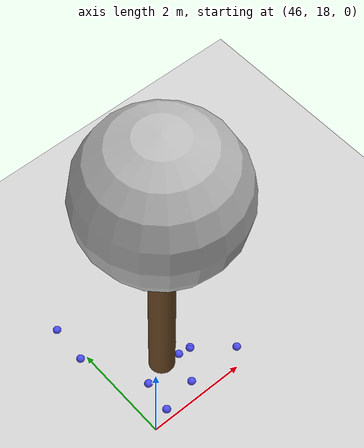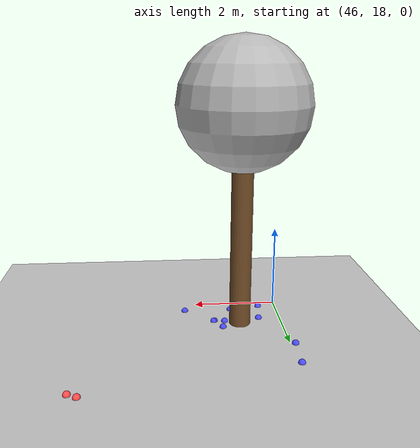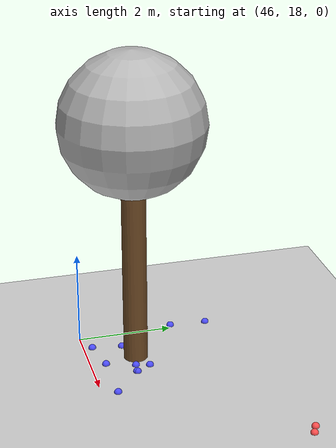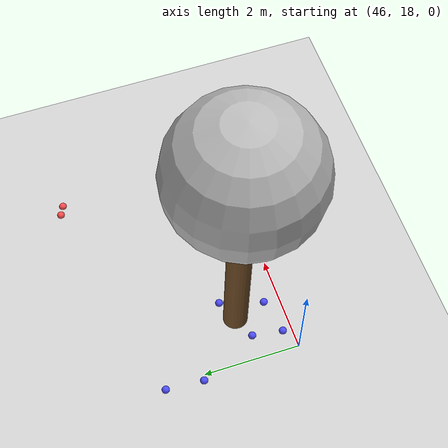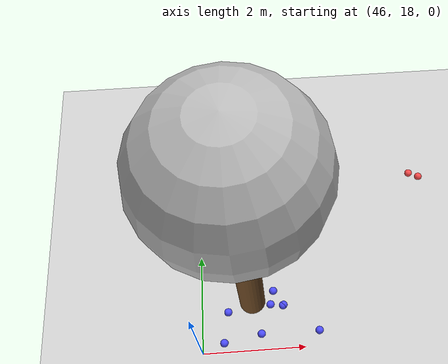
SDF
<sdf version="1.7">
 <world name="default">
  <model name="ground_plane">
   <static>1</static>
   <link name="link">
    <collision name="collision">
     <geometry><plane><normal>0 0 1</normal><size>100 100</size></plane></geometry>
     <surface>
      <contact><collide_bitmask>65535</collide_bitmask></contact>
      <friction><ode><mu>100</mu><mu2>50</mu2></ode></friction>
     </surface>
    </collision>
    <visual name="visual">
     <cast_shadows>0</cast_shadows>
     <geometry><plane><normal>0 0 1</normal><size>100 100</size></plane></geometry>
     <material>
      <script><uri>file://media/materials/scripts/gazebo.material</uri><name>Gazebo/Grey</name></script>
     </material>
    </visual>
   </link>
  </model>
  <model name="tree_simple_54">
   <static>1</static>
   <link name="link">
    <pose>0 0 0.1 0 -0 0</pose>
    <inertial>
     <mass>666</mass>
     <inertia>
      <ixx>0.0861167</ixx>
      <ixy>0</ixy>
      <ixz>0</ixz>
      <iyy>0.0861167</iyy>
      <iyz>0</iyz>
      <izz>0.0861167</izz>
     </inertia>
    </inertial>
    <collision name="collision_trunk">
     <pose>0 0 2 0 -0 0</pose>
     <geometry><cylinder><radius>0.25</radius><length>4</length></cylinder></geometry>
     <surface>
      <contact>
       <poissons_ratio>0.347</poissons_ratio>
       <elastic_modulus>8.8e+09</elastic_modulus>
       <ode><kp>100000</kp><kd>100</kd><max_vel>100</max_vel><min_depth>0.001</min_depth></ode>
      </contact>
      <friction>
       <torsional>
        <coefficient>1</coefficient>
        <use_patch_radius>0</use_patch_radius>
        <surface_radius>0.01</surface_radius>
       </torsional>
      </friction>
     </surface>
    </collision>
    <collision name="collision_treetop">
     <pose>0 0 5.2 0 -0 0</pose>
     <geometry><sphere><radius>1.5</radius></sphere></geometry>
     <surface>
      <contact>
       <poissons_ratio>0.347</poissons_ratio>
       <elastic_modulus>8.8e+09</elastic_modulus>
       <ode><kp>100000</kp><kd>100</kd><max_vel>100</max_vel><min_depth>0.001</min_depth></ode>
      </contact>
      <friction>
       <torsional>
        <coefficient>1</coefficient>
        <use_patch_radius>0</use_patch_radius>
        <surface_radius>0.01</surface_radius>
       </torsional>
      </friction>
     </surface>
    </collision>
    <visual name="trunk">
     <pose>0 0 2 0 -0 0</pose>
     <geometry><cylinder><radius>0.25</radius><length>4</length></cylinder></geometry>
     <material>
      <script>
       <uri>model://tree_simple/scripts</uri>
       <uri>model://tree_simple/materials/textures</uri>
       <name>TreeSimple/Trunk</name>
      </script>
     </material>
    </visual>
    <visual name="treetop">
     <pose>0 0 5.2 0 -0 0</pose>
     <geometry><sphere><radius>1.5</radius></sphere></geometry>
     <material>
      <script>
       <uri>model://tree_simple/scripts</uri>
       <uri>model://tree_simple/materials/textures</uri>
       <name>TreeSimple/Treetop</name>
      </script>
     </material>
    </visual>
   </link>
   <pose>47 19 -0.1 0 -0 0</pose>
  </model>
  <model name="seed_red_211">
   <link name="link">
    <inertial>
     <mass>1</mass>
     <inertia><ixx>0.1</ixx><ixy>0</ixy><ixz>0</ixz><iyy>0.1</iyy><iyz>0</iyz><izz>0.1</izz></inertia>
    </inertial>
    <visual name="visual">
     <geometry><sphere><radius>0.08</radius></sphere></geometry>
     <material>
      <script><name>Gazebo/Grey</name><uri>file://media/materials/scripts/gazebo.material</uri></script>
      <shader type="pixel"><normal_map>__default__</normal_map></shader>
      <ambient>1 0.3 0.3 1</ambient>
      <diffuse>0.7 0.7 0.7 1</diffuse>
      <specular>0.01 0.01 0.01 1</specular>
      <emissive>0 0 0 1</emissive>
     </material>
    </visual>
    <collision name="collision">
     <geometry><sphere><radius>0.0005</radius></sphere></geometry>
     <surface>
      <friction>
       <ode><mu>1</mu><mu2>1</mu2><fdir1>0 0 0</fdir1><slip1>0</slip1><slip2>0</slip2></ode>
       <torsional>
        <coefficient>1</coefficient>
        <patch_radius>0</patch_radius>
        <surface_radius>0</surface_radius>
        <use_patch_radius>1</use_patch_radius>
        <ode><slip>0</slip></ode>
       </torsional>
      </friction>
      <bounce><restitution_coefficient>0</restitution_coefficient><threshold>1e+06</threshold></bounce>
      <contact>
       <collide_without_contact>0</collide_without_contact>
       <collide_without_contact_bitmask>1</collide_without_contact_bitmask>
       <collide_bitmask>1</collide_bitmask>
       <ode>
        <soft_cfm>0</soft_cfm>
        <soft_erp>0.2</soft_erp>
        <kp>1e+13</kp>
        <kd>1</kd>
        <max_vel>0.01</max_vel>
        <min_depth>0</min_depth>
       </ode>
       <bullet>
        <split_impulse>1</split_impulse>
        <split_impulse_penetration_threshold>-0.01</split_impulse_penetration_threshold>
        <soft_cfm>0</soft_cfm>
        <soft_erp>0.2</soft_erp>
        <kp>1e+13</kp>
        <kd>1</kd>
       </bullet>
      </contact>
     </surface>
    </collision>
   </link>
   <static>0</static>
   <pose>50.6956 21.6057 0.0005 0 -0 0</pose>
  </model>
  <model name="seed_red_216">
   <link name="link">
    <inertial>
     <mass>1</mass>
     <inertia><ixx>0.1</ixx><ixy>0</ixy><ixz>0</ixz><iyy>0.1</iyy><iyz>0</iyz><izz>0.1</izz></inertia>
    </inertial>
    <visual name="visual">
     <geometry><sphere><radius>0.08</radius></sphere></geometry>
     <material>
      <script><name>Gazebo/Grey</name><uri>file://media/materials/scripts/gazebo.material</uri></script>
      <shader type="pixel"><normal_map>__default__</normal_map></shader>
      <ambient>1 0.3 0.3 1</ambient>
      <diffuse>0.7 0.7 0.7 1</diffuse>
      <specular>0.01 0.01 0.01 1</specular>
      <emissive>0 0 0 1</emissive>
     </material>
    </visual>
    <collision name="collision">
     <geometry><sphere><radius>0.0005</radius></sphere></geometry>
     <surface>
      <friction>
       <ode><mu>1</mu><mu2>1</mu2><fdir1>0 0 0</fdir1><slip1>0</slip1><slip2>0</slip2></ode>
       <torsional>
        <coefficient>1</coefficient>
        <patch_radius>0</patch_radius>
        <surface_radius>0</surface_radius>
        <use_patch_radius>1</use_patch_radius>
        <ode><slip>0</slip></ode>
       </torsional>
      </friction>
      <bounce><restitution_coefficient>0</restitution_coefficient><threshold>1e+06</threshold></bounce>
      <contact>
       <collide_without_contact>0</collide_without_contact>
       <collide_without_contact_bitmask>1</collide_without_contact_bitmask>
       <collide_bitmask>1</collide_bitmask>
       <ode>
        <soft_cfm>0</soft_cfm>
        <soft_erp>0.2</soft_erp>
        <kp>1e+13</kp>
        <kd>1</kd>
        <max_vel>0.01</max_vel>
        <min_depth>0</min_depth>
       </ode>
       <bullet>
        <split_impulse>1</split_impulse>
        <split_impulse_penetration_threshold>-0.01</split_impulse_penetration_threshold>
        <soft_cfm>0</soft_cfm>
        <soft_erp>0.2</soft_erp>
        <kp>1e+13</kp>
        <kd>1</kd>
       </bullet>
      </contact>
     </surface>
    </collision>
   </link>
   <static>0</static>
   <pose>50.4954 21.7033 0.0005 0 -0 0</pose>
  </model>
  <model name="seed_blue_89">
   <link name="link">
    <inertial>
     <mass>1</mass>
     <inertia><ixx>0.1</ixx><ixy>0</ixy><ixz>0</ixz><iyy>0.1</iyy><iyz>0</iyz><izz>0.1</izz></inertia>
    </inertial>
    <visual name="visual">
     <geometry><sphere><radius>0.08</radius></sphere></geometry>
     <material>
      <script><name>Gazebo/Grey</name><uri>file://media/materials/scripts/gazebo.material</uri></script>
      <shader type="pixel"><normal_map>__default__</normal_map></shader>
      <ambient>0.3 0.3 1 1</ambient>
      <diffuse>0.7 0.7 0.7 1</diffuse>
      <specular>0.01 0.01 0.01 1</specular>
      <emissive>0 0 0 1</emissive>
     </material>
    </visual>
    <collision name="collision">
     <geometry><sphere><radius>0.0005</radius></sphere></geometry>
     <surface>
      <friction>
       <ode><mu>1</mu><mu2>1</mu2><fdir1>0 0 0</fdir1><slip1>0</slip1><slip2>0</slip2></ode>
       <torsional>
        <coefficient>1</coefficient>
        <patch_radius>0</patch_radius>
        <surface_radius>0</surface_radius>
        <use_patch_radius>1</use_patch_radius>
        <ode><slip>0</slip></ode>
       </torsional>
      </friction>
      <bounce><restitution_coefficient>0</restitution_coefficient><threshold>1e+06</threshold></bounce>
      <contact>
       <collide_without_contact>0</collide_without_contact>
       <collide_without_contact_bitmask>1</collide_without_contact_bitmask>
       <collide_bitmask>1</collide_bitmask>
       <ode>
        <soft_cfm>0</soft_cfm>
        <soft_erp>0.2</soft_erp>
        <kp>1e+13</kp>
        <kd>1</kd>
        <max_vel>0.01</max_vel>
        <min_depth>0</min_depth>
       </ode>
       <bullet>
        <split_impulse>1</split_impulse>
        <split_impulse_penetration_threshold>-0.01</split_impulse_penetration_threshold>
        <soft_cfm>0</soft_cfm>
        <soft_erp>0.2</soft_erp>
        <kp>1e+13</kp>
        <kd>1</kd>
       </bullet>
      </contact>
     </surface>
    </collision>
   </link>
   <static>0</static>
   <pose>45.8852 20.0489 0.0005 0 -0 0</pose>
  </model>
  <model name="seed_blue_96">
   <link name="link">
    <inertial>
     <mass>1</mass>
     <inertia><ixx>0.1</ixx><ixy>0</ixy><ixz>0</ixz><iyy>0.1</iyy><iyz>0</iyz><izz>0.1</izz></inertia>
    </inertial>
    <visual name="visual">
     <geometry><sphere><radius>0.08</radius></sphere></geometry>
     <material>
      <script><name>Gazebo/Grey</name><uri>file://media/materials/scripts/gazebo.material</uri></script>
      <shader type="pixel"><normal_map>__default__</normal_map></shader>
      <ambient>0.3 0.3 1 1</ambient>
      <diffuse>0.7 0.7 0.7 1</diffuse>
      <specular>0.01 0.01 0.01 1</specular>
      <emissive>0 0 0 1</emissive>
     </material>
    </visual>
    <collision name="collision">
     <geometry><sphere><radius>0.0005</radius></sphere></geometry>
     <surface>
      <friction>
       <ode><mu>1</mu><mu2>1</mu2><fdir1>0 0 0</fdir1><slip1>0</slip1><slip2>0</slip2></ode>
       <torsional>
        <coefficient>1</coefficient>
        <patch_radius>0</patch_radius>
        <surface_radius>0</surface_radius>
        <use_patch_radius>1</use_patch_radius>
        <ode><slip>0</slip></ode>
       </torsional>
      </friction>
      <bounce><restitution_coefficient>0</restitution_coefficient><threshold>1e+06</threshold></bounce>
      <contact>
       <collide_without_contact>0</collide_without_contact>
       <collide_without_contact_bitmask>1</collide_without_contact_bitmask>
       <collide_bitmask>1</collide_bitmask>
       <ode>
        <soft_cfm>0</soft_cfm>
        <soft_erp>0.2</soft_erp>
        <kp>1e+13</kp>
        <kd>1</kd>
        <max_vel>0.01</max_vel>
        <min_depth>0</min_depth>
       </ode>
       <bullet>
        <split_impulse>1</split_impulse>
        <split_impulse_penetration_threshold>-0.01</split_impulse_penetration_threshold>
        <soft_cfm>0</soft_cfm>
        <soft_erp>0.2</soft_erp>
        <kp>1e+13</kp>
        <kd>1</kd>
       </bullet>
      </contact>
     </surface>
    </collision>
   </link>
   <static>0</static>
   <pose>45.9382 20.83 0.0005 0 -0 0</pose>
  </model>
  <model name="seed_blue_117">
   <link name="link">
    <inertial>
     <mass>1</mass>
     <inertia><ixx>0.1</ixx><ixy>0</ixy><ixz>0</ixz><iyy>0.1</iyy><iyz>0</iyz><izz>0.1</izz></inertia>
    </inertial>
    <visual name="visual">
     <geometry><sphere><radius>0.08</radius></sphere></geometry>
     <material>
      <script><name>Gazebo/Grey</name><uri>file://media/materials/scripts/gazebo.material</uri></script>
      <shader type="pixel"><normal_map>__default__</normal_map></shader>
      <ambient>0.3 0.3 1 1</ambient>
      <diffuse>0.7 0.7 0.7 1</diffuse>
      <specular>0.01 0.01 0.01 1</specular>
      <emissive>0 0 0 1</emissive>
     </material>
    </visual>
    <collision name="collision">
     <geometry><sphere><radius>0.0005</radius></sphere></geometry>
     <surface>
      <friction>
       <ode><mu>1</mu><mu2>1</mu2><fdir1>0 0 0</fdir1><slip1>0</slip1><slip2>0</slip2></ode>
       <torsional>
        <coefficient>1</coefficient>
        <patch_radius>0</patch_radius>
        <surface_radius>0</surface_radius>
        <use_patch_radius>1</use_patch_radius>
        <ode><slip>0</slip></ode>
       </torsional>
      </friction>
      <bounce><restitution_coefficient>0</restitution_coefficient><threshold>1e+06</threshold></bounce>
      <contact>
       <collide_without_contact>0</collide_without_contact>
       <collide_without_contact_bitmask>1</collide_without_contact_bitmask>
       <collide_bitmask>1</collide_bitmask>
       <ode>
        <soft_cfm>0</soft_cfm>
        <soft_erp>0.2</soft_erp>
        <kp>1e+13</kp>
        <kd>1</kd>
        <max_vel>0.01</max_vel>
        <min_depth>0</min_depth>
       </ode>
       <bullet>
        <split_impulse>1</split_impulse>
        <split_impulse_penetration_threshold>-0.01</split_impulse_penetration_threshold>
        <soft_cfm>0</soft_cfm>
        <soft_erp>0.2</soft_erp>
        <kp>1e+13</kp>
        <kd>1</kd>
       </bullet>
      </contact>
     </surface>
    </collision>
   </link>
   <static>0</static>
   <pose>47.1506 18.3251 0.0005 0 -0 0</pose>
  </model>
  <model name="seed_blue_118">
   <link name="link">
    <inertial>
     <mass>1</mass>
     <inertia><ixx>0.1</ixx><ixy>0</ixy><ixz>0</ixz><iyy>0.1</iyy><iyz>0</iyz><izz>0.1</izz></inertia>
    </inertial>
    <visual name="visual">
     <geometry><sphere><radius>0.08</radius></sphere></geometry>
     <material>
      <script><name>Gazebo/Grey</name><uri>file://media/materials/scripts/gazebo.material</uri></script>
      <shader type="pixel"><normal_map>__default__</normal_map></shader>
      <ambient>0.3 0.3 1 1</ambient>
      <diffuse>0.7 0.7 0.7 1</diffuse>
      <specular>0.01 0.01 0.01 1</specular>
      <emissive>0 0 0 1</emissive>
     </material>
    </visual>
    <collision name="collision">
     <geometry><sphere><radius>0.0005</radius></sphere></geometry>
     <surface>
      <friction>
       <ode><mu>1</mu><mu2>1</mu2><fdir1>0 0 0</fdir1><slip1>0</slip1><slip2>0</slip2></ode>
       <torsional>
        <coefficient>1</coefficient>
        <patch_radius>0</patch_radius>
        <surface_radius>0</surface_radius>
        <use_patch_radius>1</use_patch_radius>
        <ode><slip>0</slip></ode>
       </torsional>
      </friction>
      <bounce><restitution_coefficient>0</restitution_coefficient><threshold>1e+06</threshold></bounce>
      <contact>
       <collide_without_contact>0</collide_without_contact>
       <collide_without_contact_bitmask>1</collide_without_contact_bitmask>
       <collide_bitmask>1</collide_bitmask>
       <ode>
        <soft_cfm>0</soft_cfm>
        <soft_erp>0.2</soft_erp>
        <kp>1e+13</kp>
        <kd>1</kd>
        <max_vel>0.01</max_vel>
        <min_depth>0</min_depth>
       </ode>
       <bullet>
        <split_impulse>1</split_impulse>
        <split_impulse_penetration_threshold>-0.01</split_impulse_penetration_threshold>
        <soft_cfm>0</soft_cfm>
        <soft_erp>0.2</soft_erp>
        <kp>1e+13</kp>
        <kd>1</kd>
       </bullet>
      </contact>
     </surface>
    </collision>
   </link>
   <static>0</static>
   <pose>47.6007 18.8811 0.0005 0 -0 0</pose>
  </model>
  <model name="seed_blue_119">
   <link name="link">
    <inertial>
     <mass>1</mass>
     <inertia><ixx>0.1</ixx><ixy>0</ixy><ixz>0</ixz><iyy>0.1</iyy><iyz>0</iyz><izz>0.1</izz></inertia>
    </inertial>
    <visual name="visual">
     <geometry><sphere><radius>0.08</radius></sphere></geometry>
     <material>
      <script><name>Gazebo/Grey</name><uri>file://media/materials/scripts/gazebo.material</uri></script>
      <shader type="pixel"><normal_map>__default__</normal_map></shader>
      <ambient>0.3 0.3 1 1</ambient>
      <diffuse>0.7 0.7 0.7 1</diffuse>
      <specular>0.01 0.01 0.01 1</specular>
      <emissive>0 0 0 1</emissive>
     </material>
    </visual>
    <collision name="collision">
     <geometry><sphere><radius>0.0005</radius></sphere></geometry>
     <surface>
      <friction>
       <ode><mu>1</mu><mu2>1</mu2><fdir1>0 0 0</fdir1><slip1>0</slip1><slip2>0</slip2></ode>
       <torsional>
        <coefficient>1</coefficient>
        <patch_radius>0</patch_radius>
        <surface_radius>0</surface_radius>
        <use_patch_radius>1</use_patch_radius>
        <ode><slip>0</slip></ode>
       </torsional>
      </friction>
      <bounce><restitution_coefficient>0</restitution_coefficient><threshold>1e+06</threshold></bounce>
      <contact>
       <collide_without_contact>0</collide_without_contact>
       <collide_without_contact_bitmask>1</collide_without_contact_bitmask>
       <collide_bitmask>1</collide_bitmask>
       <ode>
        <soft_cfm>0</soft_cfm>
        <soft_erp>0.2</soft_erp>
        <kp>1e+13</kp>
        <kd>1</kd>
        <max_vel>0.01</max_vel>
        <min_depth>0</min_depth>
       </ode>
       <bullet>
        <split_impulse>1</split_impulse>
        <split_impulse_penetration_threshold>-0.01</split_impulse_penetration_threshold>
        <soft_cfm>0</soft_cfm>
        <soft_erp>0.2</soft_erp>
        <kp>1e+13</kp>
        <kd>1</kd>
       </bullet>
      </contact>
     </surface>
    </collision>
   </link>
   <static>0</static>
   <pose>46.51 18.8108 0.0005 0 -0 0</pose>
  </model>
  <model name="seed_blue_120">
   <link name="link">
    <inertial>
     <mass>1</mass>
     <inertia><ixx>0.1</ixx><ixy>0</ixy><ixz>0</ixz><iyy>0.1</iyy><iyz>0</iyz><izz>0.1</izz></inertia>
    </inertial>
    <visual name="visual">
     <geometry><sphere><radius>0.08</radius></sphere></geometry>
     <material>
      <script><name>Gazebo/Grey</name><uri>file://media/materials/scripts/gazebo.material</uri></script>
      <shader type="pixel"><normal_map>__default__</normal_map></shader>
      <ambient>0.3 0.3 1 1</ambient>
      <diffuse>0.7 0.7 0.7 1</diffuse>
      <specular>0.01 0.01 0.01 1</specular>
      <emissive>0 0 0 1</emissive>
     </material>
    </visual>
    <collision name="collision">
     <geometry><sphere><radius>0.0005</radius></sphere></geometry>
     <surface>
      <friction>
       <ode><mu>1</mu><mu2>1</mu2><fdir1>0 0 0</fdir1><slip1>0</slip1><slip2>0</slip2></ode>
       <torsional>
        <coefficient>1</coefficient>
        <patch_radius>0</patch_radius>
        <surface_radius>0</surface_radius>
        <use_patch_radius>1</use_patch_radius>
        <ode><slip>0</slip></ode>
       </torsional>
      </friction>
      <bounce><restitution_coefficient>0</restitution_coefficient><threshold>1e+06</threshold></bounce>
      <contact>
       <collide_without_contact>0</collide_without_contact>
       <collide_without_contact_bitmask>1</collide_without_contact_bitmask>
       <collide_bitmask>1</collide_bitmask>
       <ode>
        <soft_cfm>0</soft_cfm>
        <soft_erp>0.2</soft_erp>
        <kp>1e+13</kp>
        <kd>1</kd>
        <max_vel>0.01</max_vel>
        <min_depth>0</min_depth>
       </ode>
       <bullet>
        <split_impulse>1</split_impulse>
        <split_impulse_penetration_threshold>-0.01</split_impulse_penetration_threshold>
        <soft_cfm>0</soft_cfm>
        <soft_erp>0.2</soft_erp>
        <kp>1e+13</kp>
        <kd>1</kd>
       </bullet>
      </contact>
     </surface>
    </collision>
   </link>
   <static>0</static>
   <pose>47.4198 19.1996 0.0005 0 -0 0</pose>
  </model>
  <model name="seed_blue_121">
   <link name="link">
    <inertial>
     <mass>1</mass>
     <inertia><ixx>0.1</ixx><ixy>0</ixy><ixz>0</ixz><iyy>0.1</iyy><iyz>0</iyz><izz>0.1</izz></inertia>
    </inertial>
    <visual name="visual">
     <geometry><sphere><radius>0.08</radius></sphere></geometry>
     <material>
      <script><name>Gazebo/Grey</name><uri>file://media/materials/scripts/gazebo.material</uri></script>
      <shader type="pixel"><normal_map>__default__</normal_map></shader>
      <ambient>0.3 0.3 1 1</ambient>
      <diffuse>0.7 0.7 0.7 1</diffuse>
      <specular>0.01 0.01 0.01 1</specular>
      <emissive>0 0 0 1</emissive>
     </material>
    </visual>
    <collision name="collision">
     <geometry><sphere><radius>0.0005</radius></sphere></geometry>
     <surface>
      <friction>
       <ode><mu>1</mu><mu2>1</mu2><fdir1>0 0 0</fdir1><slip1>0</slip1><slip2>0</slip2></ode>
       <torsional>
        <coefficient>1</coefficient>
        <patch_radius>0</patch_radius>
        <surface_radius>0</surface_radius>
        <use_patch_radius>1</use_patch_radius>
        <ode><slip>0</slip></ode>
       </torsional>
      </friction>
      <bounce><restitution_coefficient>0</restitution_coefficient><threshold>1e+06</threshold></bounce>
      <contact>
       <collide_without_contact>0</collide_without_contact>
       <collide_without_contact_bitmask>1</collide_without_contact_bitmask>
       <collide_bitmask>1</collide_bitmask>
       <ode>
        <soft_cfm>0</soft_cfm>
        <soft_erp>0.2</soft_erp>
        <kp>1e+13</kp>
        <kd>1</kd>
        <max_vel>0.01</max_vel>
        <min_depth>0</min_depth>
       </ode>
       <bullet>
        <split_impulse>1</split_impulse>
        <split_impulse_penetration_threshold>-0.01</split_impulse_penetration_threshold>
        <soft_cfm>0</soft_cfm>
        <soft_erp>0.2</soft_erp>
        <kp>1e+13</kp>
        <kd>1</kd>
       </bullet>
      </contact>
     </surface>
    </collision>
   </link>
   <static>0</static>
   <pose>47.3531 18.9176 0.0005 0 -0 0</pose>
  </model>
  <model name="seed_blue_122">
   <link name="link">
    <inertial>
     <mass>1</mass>
     <inertia><ixx>0.1</ixx><ixy>0</ixy><ixz>0</ixz><iyy>0.1</iyy><iyz>0</iyz><izz>0.1</izz></inertia>
    </inertial>
    <visual name="visual">
     <geometry><sphere><radius>0.08</radius></sphere></geometry>
     <material>
      <script><name>Gazebo/Grey</name><uri>file://media/materials/scripts/gazebo.material</uri></script>
      <shader type="pixel"><normal_map>__default__</normal_map></shader>
      <ambient>0.3 0.3 1 1</ambient>
      <diffuse>0.7 0.7 0.7 1</diffuse>
      <specular>0.01 0.01 0.01 1</specular>
      <emissive>0 0 0 1</emissive>
     </material>
    </visual>
    <collision name="collision">
     <geometry><sphere><radius>0.0005</radius></sphere></geometry>
     <surface>
      <friction>
       <ode><mu>1</mu><mu2>1</mu2><fdir1>0 0 0</fdir1><slip1>0</slip1><slip2>0</slip2></ode>
       <torsional>
        <coefficient>1</coefficient>
        <patch_radius>0</patch_radius>
        <surface_radius>0</surface_radius>
        <use_patch_radius>1</use_patch_radius>
        <ode><slip>0</slip></ode>
       </torsional>
      </friction>
      <bounce><restitution_coefficient>0</restitution_coefficient><threshold>1e+06</threshold></bounce>
      <contact>
       <collide_without_contact>0</collide_without_contact>
       <collide_without_contact_bitmask>1</collide_without_contact_bitmask>
       <collide_bitmask>1</collide_bitmask>
       <ode>
        <soft_cfm>0</soft_cfm>
        <soft_erp>0.2</soft_erp>
        <kp>1e+13</kp>
        <kd>1</kd>
        <max_vel>0.01</max_vel>
        <min_depth>0</min_depth>
       </ode>
       <bullet>
        <split_impulse>1</split_impulse>
        <split_impulse_penetration_threshold>-0.01</split_impulse_penetration_threshold>
        <soft_cfm>0</soft_cfm>
        <soft_erp>0.2</soft_erp>
        <kp>1e+13</kp>
        <kd>1</kd>
       </bullet>
      </contact>
     </surface>
    </collision>
   </link>
   <static>0</static>
   <pose>48.2872 18.3207 0.0005 0 -0 0</pose>
  </model>
  <model name="seed_blue_123">
   <link name="link">
    <inertial>
     <mass>1</mass>
     <inertia><ixx>0.1</ixx><ixy>0</ixy><ixz>0</ixz><iyy>0.1</iyy><iyz>0</iyz><izz>0.1</izz></inertia>
    </inertial>
    <visual name="visual">
     <geometry><sphere><radius>0.08</radius></sphere></geometry>
     <material>
      <script><name>Gazebo/Grey</name><uri>file://media/materials/scripts/gazebo.material</uri></script>
      <shader type="pixel"><normal_map>__default__</normal_map></shader>
      <ambient>0.3 0.3 1 1</ambient>
      <diffuse>0.7 0.7 0.7 1</diffuse>
      <specular>0.01 0.01 0.01 1</specular>
      <emissive>0 0 0 1</emissive>
     </material>
    </visual>
    <collision name="collision">
     <geometry><sphere><radius>0.0005</radius></sphere></geometry>
     <surface>
      <friction>
       <ode><mu>1</mu><mu2>1</mu2><fdir1>0 0 0</fdir1><slip1>0</slip1><slip2>0</slip2></ode>
       <torsional>
        <coefficient>1</coefficient>
        <patch_radius>0</patch_radius>
        <surface_radius>0</surface_radius>
        <use_patch_radius>1</use_patch_radius>
        <ode><slip>0</slip></ode>
       </torsional>
      </friction>
      <bounce><restitution_coefficient>0</restitution_coefficient><threshold>1e+06</threshold></bounce>
      <contact>
       <collide_without_contact>0</collide_without_contact>
       <collide_without_contact_bitmask>1</collide_without_contact_bitmask>
       <collide_bitmask>1</collide_bitmask>
       <ode>
        <soft_cfm>0</soft_cfm>
        <soft_erp>0.2</soft_erp>
        <kp>1e+13</kp>
        <kd>1</kd>
        <max_vel>0.01</max_vel>
        <min_depth>0</min_depth>
       </ode>
       <bullet>
        <split_impulse>1</split_impulse>
        <split_impulse_penetration_threshold>-0.01</split_impulse_penetration_threshold>
        <soft_cfm>0</soft_cfm>
        <soft_erp>0.2</soft_erp>
        <kp>1e+13</kp>
        <kd>1</kd>
       </bullet>
      </contact>
     </surface>
    </collision>
   </link>
   <static>0</static>
   <pose>47.6112 18.8909 0.0005 0 -0 0</pose>
  </model>
  <model name="seed_blue_124">
   <link name="link">
    <inertial>
     <mass>1</mass>
     <inertia><ixx>0.1</ixx><ixy>0</ixy><ixz>0</ixz><iyy>0.1</iyy><iyz>0</iyz><izz>0.1</izz></inertia>
    </inertial>
    <visual name="visual">
     <geometry><sphere><radius>0.08</radius></sphere></geometry>
     <material>
      <script><name>Gazebo/Grey</name><uri>file://media/materials/scripts/gazebo.material</uri></script>
      <shader type="pixel"><normal_map>__default__</normal_map></shader>
      <ambient>0.3 0.3 1 1</ambient>
      <diffuse>0.7 0.7 0.7 1</diffuse>
      <specular>0.01 0.01 0.01 1</specular>
      <emissive>0 0 0 1</emissive>
     </material>
    </visual>
    <collision name="collision">
     <geometry><sphere><radius>0.0005</radius></sphere></geometry>
     <surface>
      <friction>
       <ode><mu>1</mu><mu2>1</mu2><fdir1>0 0 0</fdir1><slip1>0</slip1><slip2>0</slip2></ode>
       <torsional>
        <coefficient>1</coefficient>
        <patch_radius>0</patch_radius>
        <surface_radius>0</surface_radius>
        <use_patch_radius>1</use_patch_radius>
        <ode><slip>0</slip></ode>
       </torsional>
      </friction>
      <bounce><restitution_coefficient>0</restitution_coefficient><threshold>1e+06</threshold></bounce>
      <contact>
       <collide_without_contact>0</collide_without_contact>
       <collide_without_contact_bitmask>1</collide_without_contact_bitmask>
       <collide_bitmask>1</collide_bitmask>
       <ode>
        <soft_cfm>0</soft_cfm>
        <soft_erp>0.2</soft_erp>
        <kp>1e+13</kp>
        <kd>1</kd>
        <max_vel>0.01</max_vel>
        <min_depth>0</min_depth>
       </ode>
       <bullet>
        <split_impulse>1</split_impulse>
        <split_impulse_penetration_threshold>-0.01</split_impulse_penetration_threshold>
        <soft_cfm>0</soft_cfm>
        <soft_erp>0.2</soft_erp>
        <kp>1e+13</kp>
        <kd>1</kd>
       </bullet>
      </contact>
     </surface>
    </collision>
   </link>
   <static>0</static>
   <pose>46.4166 18.1876 0.0005 0 -0 0</pose>
  </model>
 </world>
</sdf>
